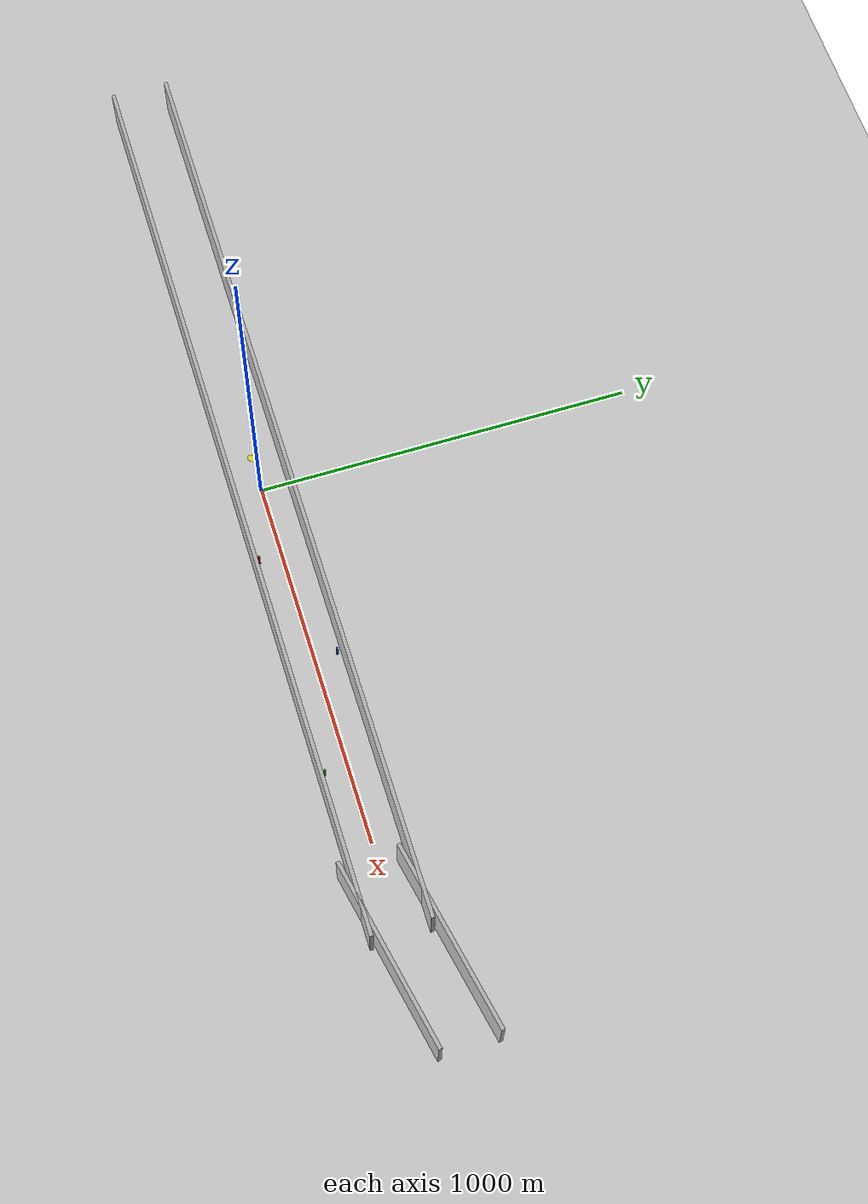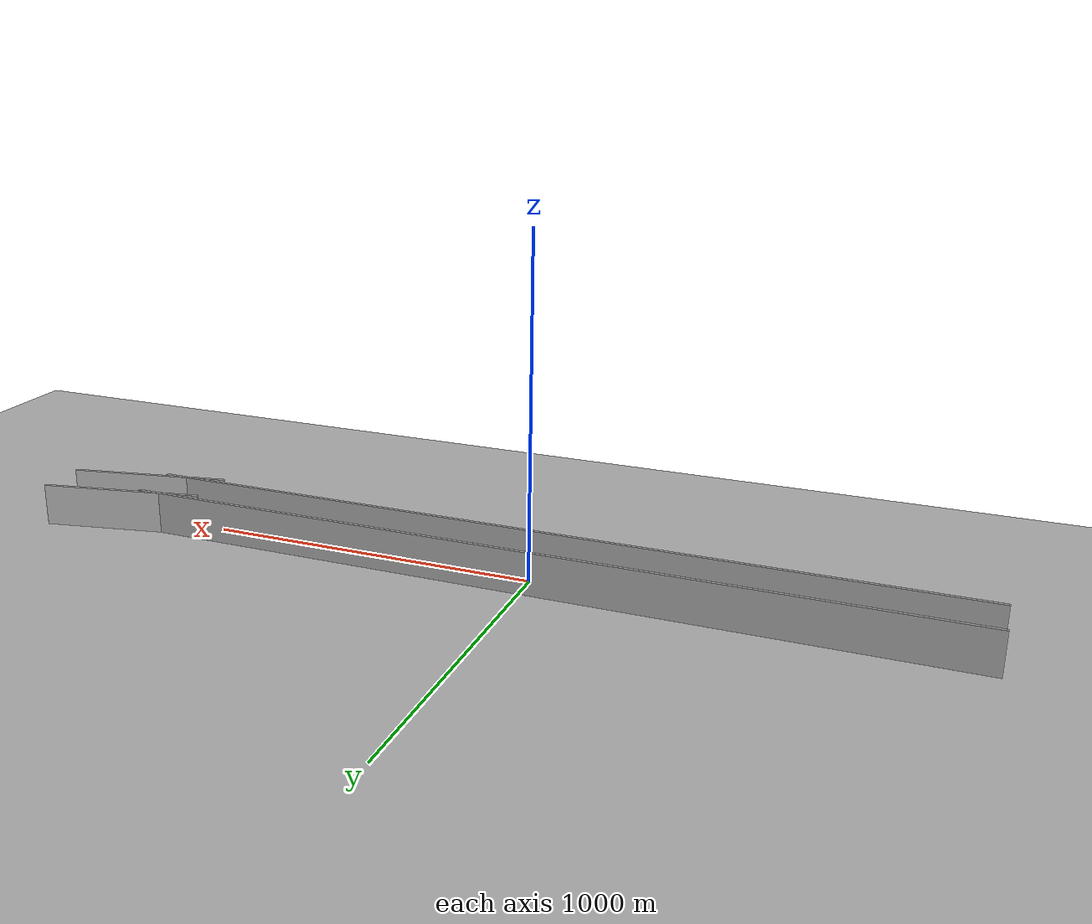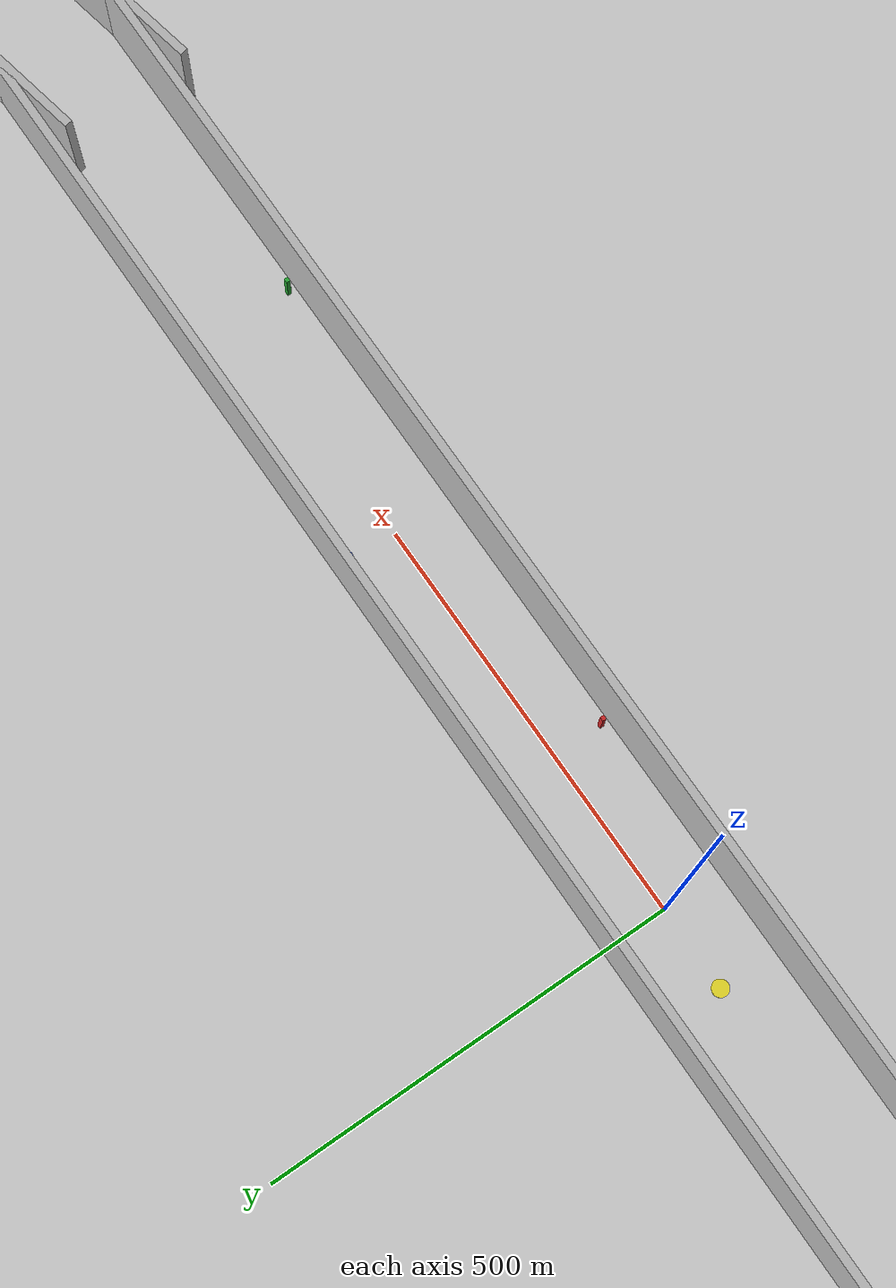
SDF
<?xml version="1.0" ?>
<sdf version="1.6">
  <world name="canyon_world">

    <!-- Physics -->
    <physics type="ode">
      <max_step_size>0.004</max_step_size>
      <real_time_factor>1</real_time_factor>
      <real_time_update_rate>250</real_time_update_rate>
    </physics>

    <!-- Ambient lighting (overcast sky) -->
    <scene>
      <ambient>0.6 0.6 0.6 1</ambient>
      <background>0.7 0.8 0.9 1</background>
      <shadows>true</shadows>
    </scene>

    <!-- Sun -->
    <light type="directional" name="sun">
      <cast_shadows>true</cast_shadows>
      <pose>0 0 100 0 0 0</pose>
      <diffuse>0.8 0.8 0.8 1</diffuse>
      <specular>0.2 0.2 0.2 1</specular>
      <attenuation>
        <range>1000</range>
        <constant>0.9</constant>
        <linear>0.01</linear>
        <quadratic>0.001</quadratic>
      </attenuation>
      <direction>-0.5 0.1 -0.9</direction>
    </light>

    <!-- Ground plane with texture -->
    <model name="ground_plane">
      <static>true</static>
      <link name="link">
        <collision name="collision">
          <geometry>
            <plane>
              <normal>0 0 1</normal>
              <size>3000 500</size>
            </plane>
          </geometry>
        </collision>
        <visual name="visual">
          <geometry>
            <plane>
              <normal>0 0 1</normal>
              <size>3000 500</size>
            </plane>
          </geometry>
          <material>
            <script>
              <uri>file://media/materials/scripts/gazebo.material</uri>
              <name>Gazebo/Rocky</name>
            </script>
          </material>
        </visual>
      </link>
    </model>

    <!-- Canyon walls - Left side -->
    <model name="canyon_wall_left">
      <static>true</static>
      <pose>0 -75 50 0 0 0</pose>
      <link name="link">
        <collision name="collision">
          <geometry>
            <box>
              <size>2500 10 150</size>
            </box>
          </geometry>
        </collision>
        <visual name="visual">
          <geometry>
            <box>
              <size>2500 10 150</size>
            </box>
          </geometry>
          <material>
            <script>
              <uri>file://media/materials/scripts/gazebo.material</uri>
              <name>Gazebo/Rocky</name>
            </script>
          </material>
        </visual>
      </link>
    </model>

    <!-- Canyon walls - Right side -->
    <model name="canyon_wall_right">
      <static>true</static>
      <pose>0 75 50 0 0 0</pose>
      <link name="link">
        <collision name="collision">
          <geometry>
            <box>
              <size>2500 10 150</size>
            </box>
          </geometry>
        </collision>
        <visual name="visual">
          <geometry>
            <box>
              <size>2500 10 150</size>
            </box>
          </geometry>
          <material>
            <script>
              <uri>file://media/materials/scripts/gazebo.material</uri>
              <name>Gazebo/Rocky</name>
            </script>
          </material>
        </visual>
      </link>
    </model>

    <!-- Curve section 1 (gentle left turn) -->
    <model name="canyon_curve_1_left">
      <static>true</static>
      <pose>1300 -50 50 0 0 0.2</pose>
      <link name="link">
        <collision name="collision">
          <geometry>
            <box>
              <size>500 10 150</size>
            </box>
          </geometry>
        </collision>
        <visual name="visual">
          <geometry>
            <box>
              <size>500 10 150</size>
            </box>
          </geometry>
          <material>
            <script>
              <uri>file://media/materials/scripts/gazebo.material</uri>
              <name>Gazebo/Concrete</name>
            </script>
          </material>
        </visual>
      </link>
    </model>

    <model name="canyon_curve_1_right">
      <static>true</static>
      <pose>1300 100 50 0 0 0.2</pose>
      <link name="link">
        <collision name="collision">
          <geometry>
            <box>
              <size>500 10 150</size>
            </box>
          </geometry>
        </collision>
        <visual name="visual">
          <geometry>
            <box>
              <size>500 10 150</size>
            </box>
          </geometry>
          <material>
            <script>
              <uri>file://media/materials/scripts/gazebo.material</uri>
              <name>Gazebo/Concrete</name>
            </script>
          </material>
        </visual>
      </link>
    </model>

    <!-- Feature markers along canyon (for visual odometry) -->
    <model name="marker_1">
      <static>true</static>
      <pose>200 -60 20 0 0 0</pose>
      <link name="link">
        <visual name="visual">
          <geometry>
            <box><size>5 5 40</size></box>
          </geometry>
          <material>
            <script>
              <uri>file://media/materials/scripts/gazebo.material</uri>
              <name>Gazebo/Red</name>
            </script>
          </material>
        </visual>
      </link>
    </model>

    <model name="marker_2">
      <static>true</static>
      <pose>500 60 20 0 0 0</pose>
      <link name="link">
        <visual name="visual">
          <geometry>
            <box><size>5 5 40</size></box>
          </geometry>
          <material>
            <script>
              <uri>file://media/materials/scripts/gazebo.material</uri>
              <name>Gazebo/Blue</name>
            </script>
          </material>
        </visual>
      </link>
    </model>

    <model name="marker_3">
      <static>true</static>
      <pose>800 -60 20 0 0 0</pose>
      <link name="link">
        <visual name="visual">
          <geometry>
            <box><size>5 5 40</size></box>
          </geometry>
          <material>
            <script>
              <uri>file://media/materials/scripts/gazebo.material</uri>
              <name>Gazebo/Green</name>
            </script>
          </material>
        </visual>
      </link>
    </model>

    <!-- Spawn point marker -->
    <model name="spawn_marker">
      <static>true</static>
      <pose>-100 0 0.1 0 0 0</pose>
      <link name="link">
        <visual name="visual">
          <geometry>
            <cylinder>
              <radius>10</radius>
              <length>0.2</length>
            </cylinder>
          </geometry>
          <material>
            <script>
              <uri>file://media/materials/scripts/gazebo.material</uri>
              <name>Gazebo/Yellow</name>
            </script>
          </material>
        </visual>
      </link>
    </model>

    <!-- Gazebo ROS plugins -->
    <plugin name="gazebo_ros_state" filename="libgazebo_ros_state.so">
      <ros>
        <namespace>/gazebo</namespace>
      </ros>
      <update_rate>50.0</update_rate>
    </plugin>

  </world>
</sdf>
